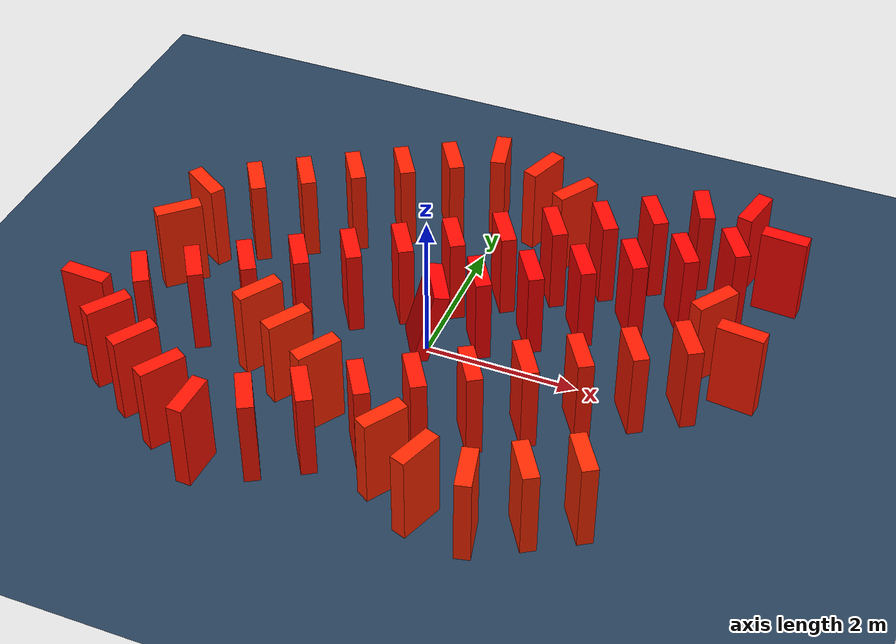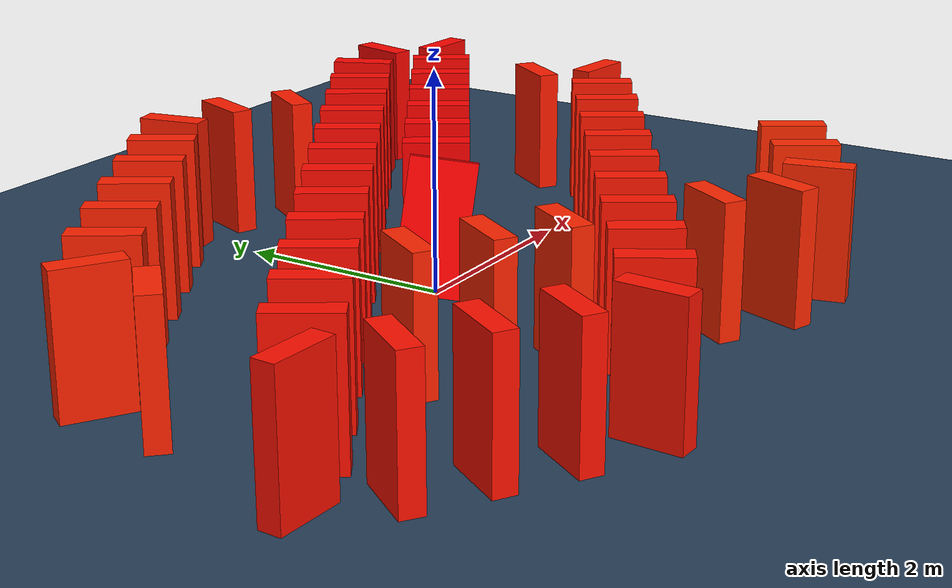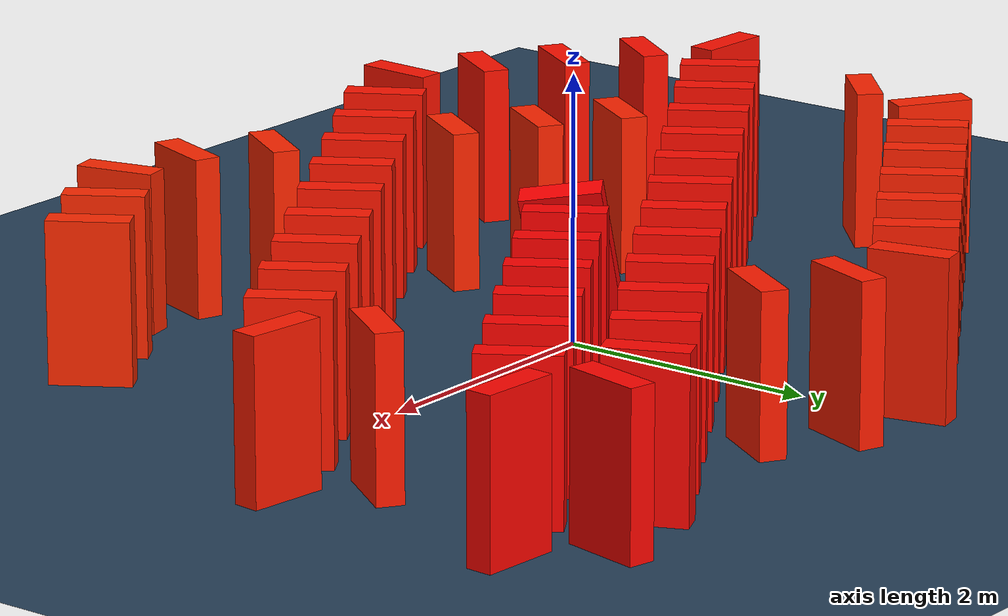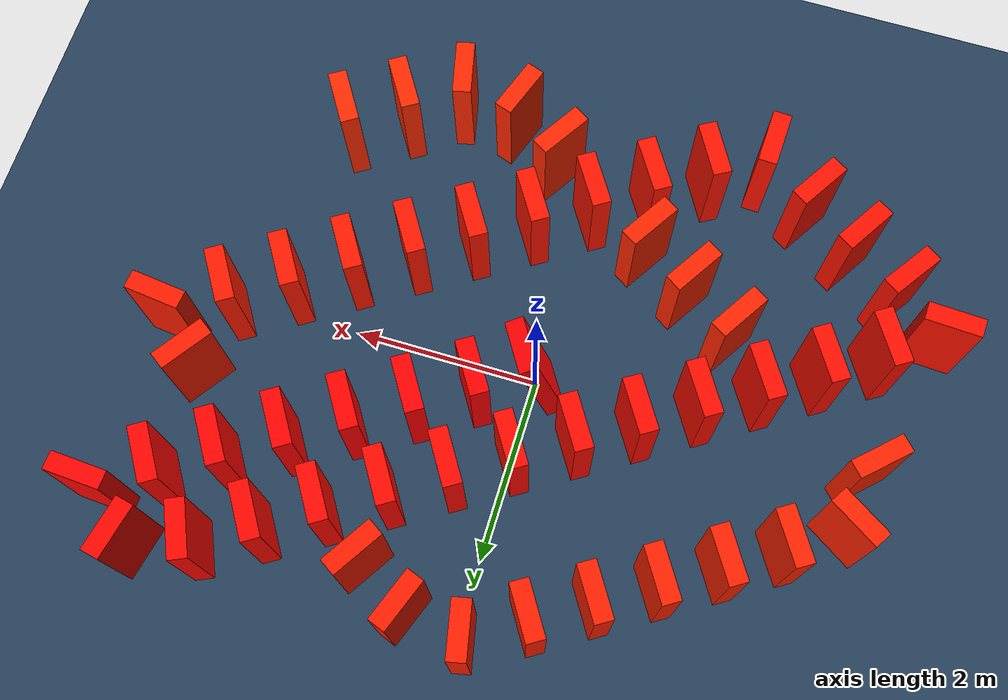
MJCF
<mujoco>
  <visual>
    <headlight diffuse="0.6 0.6 0.6" ambient="0.1 0.1 0.1" specular="0 0 0"/>
    <rgba haze="0.15 0.25 0.35 1"/>
    <global azimuth="120" elevation="-20"/>
  </visual>
  <asset>
    <texture type="skybox" builtin="gradient" rgb1="0.3 0.5 0.7" rgb2="0 0 0" width="512" height="3072"/>
    <texture type="2d" name="groundplane" builtin="checker" mark="edge" rgb1="0.2 0.3 0.4" rgb2="0.1 0.2 0.3" markrgb="0.8 0.8 0.8" width="300" height="300"/>
    <material name="groundplane" texture="groundplane" texuniform="true" texrepeat="5 5" reflectance="0.2"/>
  </asset>
  <worldbody>
    <light pos="0 0 1.5" dir="0 0 -1" directional="true"/>
    <geom name="floor" size="0 0 0.05" type="plane" material="groundplane"/>
    <body pos="0.0000 0.0000 0.6000" euler="0 15.0 32.2">
      <geom type="box" size="0.1000 0.3000 0.6000" rgba="1.000 0.000 0.000 1"/>
      <freejoint/>
    </body>
    <body pos="0.5600 0.3520 0.6000" euler="0 0.0 32.2">
      <geom type="box" size="0.1000 0.3000 0.6000" rgba="1.000 0.003 0.000 1"/>
      <freejoint/>
    </body>
    <body pos="1.1200 0.7040 0.6000" euler="0 0.0 32.2">
      <geom type="box" size="0.1000 0.3000 0.6000" rgba="1.000 0.006 0.000 1"/>
      <freejoint/>
    </body>
    <body pos="1.6800 1.0560 0.6000" euler="0 0.0 32.2">
      <geom type="box" size="0.1000 0.3000 0.6000" rgba="1.000 0.009 0.000 1"/>
      <freejoint/>
    </body>
    <body pos="2.2400 1.4080 0.6000" euler="0 0.0 32.2">
      <geom type="box" size="0.1000 0.3000 0.6000" rgba="1.000 0.012 0.000 1"/>
      <freejoint/>
    </body>
    <body pos="2.8000 1.7600 0.6000" euler="0 0.0 32.2">
      <geom type="box" size="0.1000 0.3000 0.6000" rgba="1.000 0.015 0.000 1"/>
      <freejoint/>
    </body>
    <body pos="3.3600 2.1120 0.6000" euler="0 0.0 32.2">
      <geom type="box" size="0.1000 0.3000 0.6000" rgba="1.000 0.018 0.000 1"/>
      <freejoint/>
    </body>
    <body pos="3.9200 2.4640 0.6000" euler="0 0.0 86.7">
      <geom type="box" size="0.1000 0.3000 0.6000" rgba="1.000 0.021 0.000 1"/>
      <freejoint/>
    </body>
    <body pos="3.4050 2.8930 0.6000" euler="0 0.0 167.7">
      <geom type="box" size="0.1000 0.3000 0.6000" rgba="1.000 0.024 0.000 1"/>
      <freejoint/>
    </body>
    <body pos="2.7750 2.7140 0.6000" euler="0 0.0 -156.0">
      <geom type="box" size="0.1000 0.3000 0.6000" rgba="1.000 0.027 0.000 1"/>
      <freejoint/>
    </body>
    <body pos="2.2150 2.3620 0.6000" euler="0 0.0 -147.8">
      <geom type="box" size="0.1000 0.3000 0.6000" rgba="1.000 0.030 0.000 1"/>
      <freejoint/>
    </body>
    <body pos="1.6550 2.0100 0.6000" euler="0 0.0 -147.8">
      <geom type="box" size="0.1000 0.3000 0.6000" rgba="1.000 0.033 0.000 1"/>
      <freejoint/>
    </body>
    <body pos="1.0950 1.6580 0.6000" euler="0 0.0 -147.8">
      <geom type="box" size="0.1000 0.3000 0.6000" rgba="1.000 0.036 0.000 1"/>
      <freejoint/>
    </body>
    <body pos="0.5350 1.3060 0.6000" euler="0 0.0 -147.8">
      <geom type="box" size="0.1000 0.3000 0.6000" rgba="1.000 0.039 0.000 1"/>
      <freejoint/>
    </body>
    <body pos="-0.0250 0.9540 0.6000" euler="0 0.0 -147.8">
      <geom type="box" size="0.1000 0.3000 0.6000" rgba="1.000 0.042 0.000 1"/>
      <freejoint/>
    </body>
    <body pos="-0.5850 0.6020 0.6000" euler="0 0.0 -147.8">
      <geom type="box" size="0.1000 0.3000 0.6000" rgba="1.000 0.045 0.000 1"/>
      <freejoint/>
    </body>
    <body pos="-1.1450 0.2500 0.6000" euler="0 0.0 -147.8">
      <geom type="box" size="0.1000 0.3000 0.6000" rgba="1.000 0.048 0.000 1"/>
      <freejoint/>
    </body>
    <body pos="-1.7050 -0.1020 0.6000" euler="0 0.0 -147.8">
      <geom type="box" size="0.1000 0.3000 0.6000" rgba="1.000 0.051 0.000 1"/>
      <freejoint/>
    </body>
    <body pos="-2.2650 -0.4540 0.6000" euler="0 0.0 -147.8">
      <geom type="box" size="0.1000 0.3000 0.6000" rgba="1.000 0.054 0.000 1"/>
      <freejoint/>
    </body>
    <body pos="-2.8250 -0.8060 0.6000" euler="0 0.0 -147.8">
      <geom type="box" size="0.1000 0.3000 0.6000" rgba="1.000 0.057 0.000 1"/>
      <freejoint/>
    </body>
    <body pos="-3.3850 -1.1580 0.6000" euler="0 0.0 -147.8">
      <geom type="box" size="0.1000 0.3000 0.6000" rgba="1.000 0.060 0.000 1"/>
      <freejoint/>
    </body>
    <body pos="-3.9450 -1.5100 0.6000" euler="0 0.0 -92.8">
      <geom type="box" size="0.1000 0.3000 0.6000" rgba="1.000 0.063 0.000 1"/>
      <freejoint/>
    </body>
    <body pos="-3.4225 -1.9170 0.6000" euler="0 0.0 -35.0">
      <geom type="box" size="0.1000 0.3000 0.6000" rgba="1.000 0.066 0.000 1"/>
      <freejoint/>
    </body>
    <body pos="-2.8625 -2.2690 0.6000" euler="0 0.0 -32.2">
      <geom type="box" size="0.1000 0.3000 0.6000" rgba="1.000 0.069 0.000 1"/>
      <freejoint/>
    </body>
    <body pos="-2.3025 -2.6210 0.6000" euler="0 0.0 -32.2">
      <geom type="box" size="0.1000 0.3000 0.6000" rgba="1.000 0.072 0.000 1"/>
      <freejoint/>
    </body>
    <body pos="-1.7425 -2.9730 0.6000" euler="0 0.0 -2.5">
      <geom type="box" size="0.1000 0.3000 0.6000" rgba="1.000 0.075 0.000 1"/>
      <freejoint/>
    </body>
    <body pos="-1.1650 -2.6700 0.6000" euler="0 0.0 29.9">
      <geom type="box" size="0.1000 0.3000 0.6000" rgba="1.000 0.078 0.000 1"/>
      <freejoint/>
    </body>
    <body pos="-0.6050 -2.3180 0.6000" euler="0 0.0 32.2">
      <geom type="box" size="0.1000 0.3000 0.6000" rgba="1.000 0.081 0.000 1"/>
      <freejoint/>
    </body>
    <body pos="-0.0450 -1.9660 0.6000" euler="0 0.0 32.2">
      <geom type="box" size="0.1000 0.3000 0.6000" rgba="1.000 0.084 0.000 1"/>
      <freejoint/>
    </body>
    <body pos="0.5150 -1.6140 0.6000" euler="0 0.0 32.2">
      <geom type="box" size="0.1000 0.3000 0.6000" rgba="1.000 0.087 0.000 1"/>
      <freejoint/>
    </body>
    <body pos="1.0750 -1.2620 0.6000" euler="0 0.0 32.2">
      <geom type="box" size="0.1000 0.3000 0.6000" rgba="1.000 0.090 0.000 1"/>
      <freejoint/>
    </body>
    <body pos="1.6350 -0.9100 0.6000" euler="0 0.0 32.2">
      <geom type="box" size="0.1000 0.3000 0.6000" rgba="1.000 0.093 0.000 1"/>
      <freejoint/>
    </body>
    <body pos="2.1950 -0.5580 0.6000" euler="0 0.0 32.2">
      <geom type="box" size="0.1000 0.3000 0.6000" rgba="1.000 0.096 0.000 1"/>
      <freejoint/>
    </body>
    <body pos="2.7550 -0.2060 0.6000" euler="0 0.0 32.2">
      <geom type="box" size="0.1000 0.3000 0.6000" rgba="1.000 0.099 0.000 1"/>
      <freejoint/>
    </body>
    <body pos="3.3150 0.1460 0.6000" euler="0 0.0 32.2">
      <geom type="box" size="0.1000 0.3000 0.6000" rgba="1.000 0.102 0.000 1"/>
      <freejoint/>
    </body>
    <body pos="3.8750 0.4980 0.6000" euler="0 0.0 83.7">
      <geom type="box" size="0.1000 0.3000 0.6000" rgba="1.000 0.105 0.000 1"/>
      <freejoint/>
    </body>
    <body pos="3.4050 0.9600 0.6000" euler="0 0.0 145.4">
      <geom type="box" size="0.1000 0.3000 0.6000" rgba="1.000 0.108 0.000 1"/>
      <freejoint/>
    </body>
    <body pos="1.1125 2.4010 0.6000" euler="0 0.0 147.8">
      <geom type="box" size="0.1000 0.3000 0.6000" rgba="1.000 0.111 0.000 1"/>
      <freejoint/>
    </body>
    <body pos="0.5525 2.7530 0.6000" euler="0 0.0 159.8">
      <geom type="box" size="0.1000 0.3000 0.6000" rgba="1.000 0.114 0.000 1"/>
      <freejoint/>
    </body>
    <body pos="-0.0950 2.8460 0.6000" euler="0 0.0 -167.9">
      <geom type="box" size="0.1000 0.3000 0.6000" rgba="1.000 0.117 0.000 1"/>
      <freejoint/>
    </body>
    <body pos="-0.6550 2.4940 0.6000" euler="0 0.0 -147.8">
      <geom type="box" size="0.1000 0.3000 0.6000" rgba="1.000 0.120 0.000 1"/>
      <freejoint/>
    </body>
    <body pos="-1.2150 2.1420 0.6000" euler="0 0.0 -147.8">
      <geom type="box" size="0.1000 0.3000 0.6000" rgba="1.000 0.123 0.000 1"/>
      <freejoint/>
    </body>
    <body pos="-1.7750 1.7900 0.6000" euler="0 0.0 -147.8">
      <geom type="box" size="0.1000 0.3000 0.6000" rgba="1.000 0.126 0.000 1"/>
      <freejoint/>
    </body>
    <body pos="-2.3350 1.4380 0.6000" euler="0 0.0 -147.8">
      <geom type="box" size="0.1000 0.3000 0.6000" rgba="1.000 0.129 0.000 1"/>
      <freejoint/>
    </body>
    <body pos="-2.8950 1.0860 0.6000" euler="0 0.0 -147.8">
      <geom type="box" size="0.1000 0.3000 0.6000" rgba="1.000 0.132 0.000 1"/>
      <freejoint/>
    </body>
    <body pos="-3.4550 0.7340 0.6000" euler="0 0.0 -122.3">
      <geom type="box" size="0.1000 0.3000 0.6000" rgba="1.000 0.135 0.000 1"/>
      <freejoint/>
    </body>
    <body pos="-3.5275 0.0850 0.6000" euler="0 0.0 -46.7">
      <geom type="box" size="0.1000 0.3000 0.6000" rgba="1.000 0.138 0.000 1"/>
      <freejoint/>
    </body>
    <body pos="-1.8475 -0.9710 0.6000" euler="0 0.0 -32.2">
      <geom type="box" size="0.1000 0.3000 0.6000" rgba="1.000 0.141 0.000 1"/>
      <freejoint/>
    </body>
    <body pos="-1.2875 -1.3230 0.6000" euler="0 0.0 -32.2">
      <geom type="box" size="0.1000 0.3000 0.6000" rgba="1.000 0.144 0.000 1"/>
      <freejoint/>
    </body>
    <body pos="-0.7275 -1.6750 0.6000" euler="0 0.0 -32.2">
      <geom type="box" size="0.1000 0.3000 0.6000" rgba="1.000 0.147 0.000 1"/>
      <freejoint/>
    </body>
    <body pos="0.4450 -2.4120 0.6000" euler="0 0.0 -32.2">
      <geom type="box" size="0.1000 0.3000 0.6000" rgba="1.000 0.150 0.000 1"/>
      <freejoint/>
    </body>
    <body pos="1.0050 -2.7640 0.6000" euler="0 0.0 -19.3">
      <geom type="box" size="0.1000 0.3000 0.6000" rgba="1.000 0.153 0.000 1"/>
      <freejoint/>
    </body>
    <body pos="1.6525 -2.8350 0.6000" euler="0 0.0 13.1">
      <geom type="box" size="0.1000 0.3000 0.6000" rgba="1.000 0.156 0.000 1"/>
      <freejoint/>
    </body>
    <body pos="2.2125 -2.4830 0.6000" euler="0 0.0 32.2">
      <geom type="box" size="0.1000 0.3000 0.6000" rgba="1.000 0.159 0.000 1"/>
      <freejoint/>
    </body>
    <body pos="2.7725 -2.1310 0.6000" euler="0 0.0 32.2">
      <geom type="box" size="0.1000 0.3000 0.6000" rgba="1.000 0.162 0.000 1"/>
      <freejoint/>
    </body>
  </worldbody>
</mujoco>
